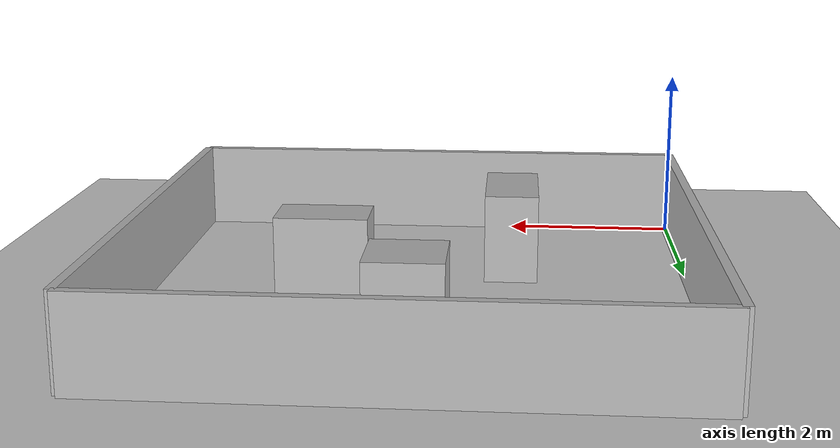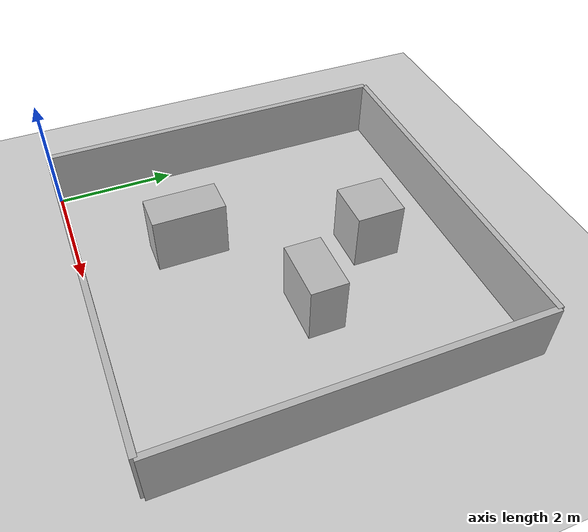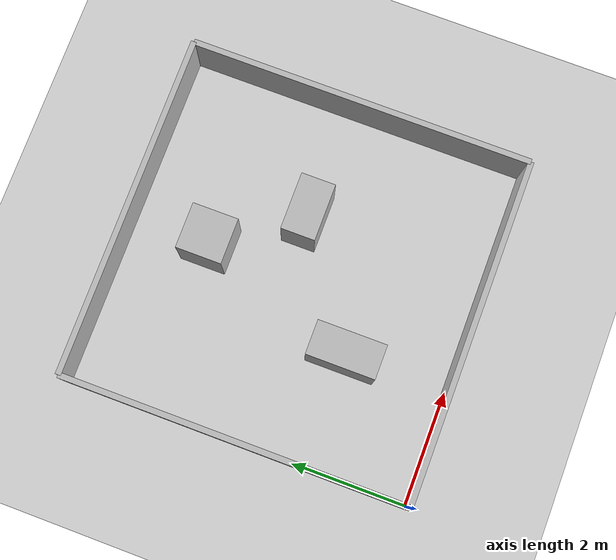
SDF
<?xml version="1.0" ?>
<sdf version="1.6">
  <world name="small_arena">

    <physics type="ode">
      <max_step_size>0.002</max_step_size>
      <real_time_update_rate>1000</real_time_update_rate>
    </physics>

    <include>
      <uri>model://sun</uri>
    </include>

    <include>
      <uri>model://ground_plane</uri>
    </include>

    <!-- Arena walls -->
    <model name="fence_left">
      <static>true</static>
      <pose>0 3 0.5 0 0 0</pose>
      <link name="link">
        <collision name="collision">
          <geometry><box><size>0.1 6.0 1.0</size></box></geometry>
        </collision>
        <visual name="visual">
          <geometry><box><size>0.1 6.0 1.0</size></box></geometry>
        </visual>
      </link>
    </model>

    <model name="fence_right">
      <static>true</static>
      <pose>6 3 0.5 0 0 0</pose>
      <link name="link">
        <collision name="collision">
          <geometry><box><size>0.1 6.0 1.0</size></box></geometry>
        </collision>
        <visual name="visual">
          <geometry><box><size>0.1 6.0 1.0</size></box></geometry>
        </visual>
      </link>
    </model>

    <model name="fence_bottom">
      <static>true</static>
      <pose>3 0 0.5 0 0 0</pose>
      <link name="link">
        <collision name="collision">
          <geometry><box><size>6.0 0.1 1.0</size></box></geometry>
        </collision>
        <visual name="visual">
          <geometry><box><size>6.0 0.1 1.0</size></box></geometry>
        </visual>
      </link>
    </model>

    <model name="fence_top">
      <static>true</static>
      <pose>3 6 0.5 0 0 0</pose>
      <link name="link">
        <collision name="collision">
          <geometry><box><size>6.0 0.1 1.0</size></box></geometry>
        </collision>
        <visual name="visual">
          <geometry><box><size>6.0 0.1 1.0</size></box></geometry>
        </visual>
      </link>
    </model>

    <!-- Obstacles -->
    <model name="box_1">
      <static>true</static>
      <pose>2.0 1.8 0.5 0 0 0</pose>
      <link name="link">
        <collision name="collision">
          <geometry><box><size>0.6 1.2 1.0</size></box></geometry>
        </collision>
        <visual name="visual">
          <geometry><box><size>0.6 1.2 1.0</size></box></geometry>
        </visual>
      </link>
    </model>

    <model name="box_2">
      <static>true</static>
      <pose>4.0 3.2 0.5 0 0 0</pose>
      <link name="link">
        <collision name="collision">
          <geometry><box><size>1.0 0.6 1.0</size></box></geometry>
        </collision>
        <visual name="visual">
          <geometry><box><size>1.0 0.6 1.0</size></box></geometry>
        </visual>
      </link>
    </model>

    <model name="box_3">
      <static>true</static>
      <pose>3.0 4.6 0.5 0 0 0</pose>
      <link name="link">
        <collision name="collision">
          <geometry><box><size>0.8 0.8 1.0</size></box></geometry>
        </collision>
        <visual name="visual">
          <geometry><box><size>0.8 0.8 1.0</size></box></geometry>
        </visual>
      </link>
    </model>

  </world>
</sdf>
